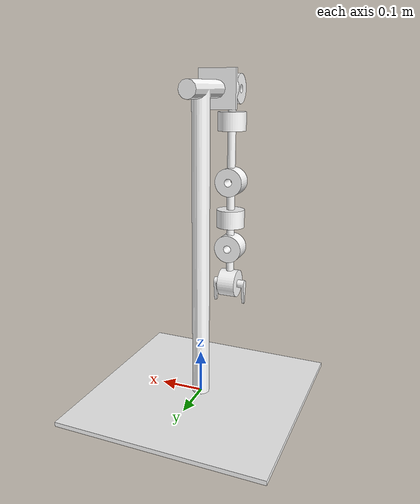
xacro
<?xml version="1.0"?>
<robot xmlns:xacro="http://www.ros.org/wiki/xacro" name="y7_arm_lite">
    <xacro:arg name="initial_positions_file" default="initial_positions.yaml" />

    <!-- Import y7_arm_lite urdf file -->
    <xacro:include filename="$(find y7_arm_lite)/urdf/y7_arm_lite.urdf" />

    <!-- Import control_xacro -->
    <xacro:include filename="y7_arm_lite.ros2_control.xacro" />

    <xacro:y7_arm_lite_ros2_control name="FakeSystem" initial_positions_file="$(arg initial_positions_file)"/>

</robot>

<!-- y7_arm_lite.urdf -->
<robot
  name="y7_arm_lite">
  <link
    name="base_link">
    <inertial>
      <origin
        xyz="-6.18896475667127E-08 -0.00731885816385526 0.157068118395406"
        rpy="0 0 0" />
      <mass
        value="3.68312490206078" />
      <inertia
        ixx="0.253102013480795"
        ixy="1.7503993282276E-08"
        ixz="1.22703848531346E-07"
        iyy="0.248272272534427"
        iyz="0.00460168302535419"
        izz="0.097406600502401" />
    </inertial>
    <visual>
      <origin
        xyz="0 0 0"
        rpy="0 0 0" />
      <geometry>
        <mesh
          filename="package://y7_arm_lite/meshes/base_link.STL" />
      </geometry>
      <material
        name="">
        <color
          rgba="1 1 1 1" />
      </material>
    </visual>
    <collision>
      <origin
        xyz="0 0 0"
        rpy="0 0 0" />
      <geometry>
        <mesh
          filename="package://y7_arm_lite/meshes/base_link.STL" />
      </geometry>
    </collision>
  </link>
  <link
    name="link1">
    <inertial>
      <origin
        xyz="2.87786213609239E-08 -0.048267128197082 -3.48820584322376E-08"
        rpy="0 0 0" />
      <mass
        value="0.16544065423041" />
      <inertia
        ixx="0.000103051264182943"
        ixy="-1.10488189781942E-10"
        ixz="-5.49849523717257E-11"
        iyy="7.98436744522682E-05"
        iyz="2.26815258240716E-10"
        izz="7.72024156337137E-05" />
    </inertial>
    <visual>
      <origin
        xyz="0 0 0"
        rpy="0 0 0" />
      <geometry>
        <mesh
          filename="package://y7_arm_lite/meshes/link1.STL" />
      </geometry>
      <material
        name="">
        <color
          rgba="1 1 1 1" />
      </material>
    </visual>
    <collision>
      <origin
        xyz="0 0 0"
        rpy="0 0 0" />
      <geometry>
        <mesh
          filename="package://y7_arm_lite/meshes/link1.STL" />
      </geometry>
    </collision>
  </link>
  <joint
    name="joint1"
    type="revolute">
    <origin
      xyz="0 -0.141 0.7"
      rpy="0 0 0" />
    <parent
      link="base_link" />
    <child
      link="link1" />
    <axis
      xyz="0 1 0" />
    <limit
      lower="-3.14"
      upper="3.14"
      effort="50"
      velocity="2" />
  </joint>
  <link
    name="link2">
    <inertial>
      <origin
        xyz="6.15479618241637E-10 5.76971999344256E-09 -0.0729517687885565"
        rpy="0 0 0" />
      <mass
        value="0.173508752370258" />
      <inertia
        ixx="8.24468631006998E-05"
        ixy="-2.24568112137793E-12"
        ixz="-6.59836221995086E-13"
        iyy="8.24407880527573E-05"
        iyz="-5.57638666042865E-12"
        izz="0.000106091971798337" />
    </inertial>
    <visual>
      <origin
        xyz="0 0 0"
        rpy="0 0 0" />
      <geometry>
        <mesh
          filename="package://y7_arm_lite/meshes/link2.STL" />
      </geometry>
      <material
        name="">
        <color
          rgba="1 1 1 1" />
      </material>
    </visual>
    <collision>
      <origin
        xyz="0 0 0"
        rpy="0 0 0" />
      <geometry>
        <mesh
          filename="package://y7_arm_lite/meshes/link2.STL" />
      </geometry>
    </collision>
  </link>
  <joint
    name="joint2"
    type="revolute">
    <origin
      xyz="0 -0.05 0"
      rpy="0 0 0" />
    <parent
      link="link1" />
    <child
      link="link2" />
    <axis
      xyz="1 0 0" />
    <limit
      lower="-3.14"
      upper="3.14"
      effort="50"
      velocity="2" />
  </joint>
  <link
    name="link3">
    <inertial>
      <origin
        xyz="-2.1443569564825E-12 -2.22044604925031E-16 -0.134759636112755"
        rpy="0 0 0" />
      <mass
        value="0.188272728864576" />
      <inertia
        ixx="0.000102859680851176"
        ixy="-1.34056824195818E-14"
        ixz="2.26766224584472E-14"
        iyy="0.00012870528255933"
        iyz="8.91360500184562E-21"
        izz="8.09621649695876E-05" />
    </inertial>
    <visual>
      <origin
        xyz="0 0 0"
        rpy="0 0 0" />
      <geometry>
        <mesh
          filename="package://y7_arm_lite/meshes/link3.STL" />
      </geometry>
      <material
        name="">
        <color
          rgba="1 1 1 1" />
      </material>
    </visual>
    <collision>
      <origin
        xyz="0 0 0"
        rpy="0 0 0" />
      <geometry>
        <mesh
          filename="package://y7_arm_lite/meshes/link3.STL" />
      </geometry>
    </collision>
  </link>
  <joint
    name="joint3"
    type="revolute">
    <origin
      xyz="0 0 -0.0755"
      rpy="0 0 0" />
    <parent
      link="link2" />
    <child
      link="link3" />
    <axis
      xyz="0 0 1" />
    <limit
      lower="-3.14"
      upper="3.14"
      effort="50"
      velocity="2" />
  </joint>
  <link
    name="link4">
    <inertial>
      <origin
        xyz="5.65645560691743E-09 -8.16500755895788E-11 -0.0898766067475472"
        rpy="0 0 0" />
      <mass
        value="0.170151895219343" />
      <inertia
        ixx="8.09565847273596E-05"
        ixy="1.47050798557356E-13"
        ixz="-2.85295448724911E-12"
        iyy="8.09604119058479E-05"
        iyz="5.41207071260792E-14"
        izz="0.000105923409833927" />
    </inertial>
    <visual>
      <origin
        xyz="0 0 0"
        rpy="0 0 0" />
      <geometry>
        <mesh
          filename="package://y7_arm_lite/meshes/link4.STL" />
      </geometry>
      <material
        name="">
        <color
          rgba="1 1 1 1" />
      </material>
    </visual>
    <collision>
      <origin
        xyz="0 0 0"
        rpy="0 0 0" />
      <geometry>
        <mesh
          filename="package://y7_arm_lite/meshes/link4.STL" />
      </geometry>
    </collision>
  </link>
  <joint
    name="joint4"
    type="revolute">
    <origin
      xyz="0 0 -0.1475"
      rpy="0 0 0" />
    <parent
      link="link3" />
    <child
      link="link4" />
    <axis
      xyz="0 1 0" />
    <limit
      lower="-3.14"
      upper="3.14"
      effort="50"
      velocity="2" />
  </joint>
  <link
    name="link5">
    <inertial>
      <origin
        xyz="1.22480215582446E-10 5.55111512312578E-17 -0.0757683803195806"
        rpy="0 0 0" />
      <mass
        value="0.165433389389251" />
      <inertia
        ixx="7.85421322406978E-05"
        ixy="8.08536583525422E-13"
        ixz="-1.17103405314417E-12"
        iyy="0.000104390419353834"
        iyz="-1.3100560696249E-20"
        izz="7.98426194741593E-05" />
    </inertial>
    <visual>
      <origin
        xyz="0 0 0"
        rpy="0 0 0" />
      <geometry>
        <mesh
          filename="package://y7_arm_lite/meshes/link5.STL" />
      </geometry>
      <material
        name="">
        <color
          rgba="1 1 1 1" />
      </material>
    </visual>
    <collision>
      <origin
        xyz="0 0 0"
        rpy="0 0 0" />
      <geometry>
        <mesh
          filename="package://y7_arm_lite/meshes/link5.STL" />
      </geometry>
    </collision>
  </link>
  <joint
    name="joint5"
    type="revolute">
    <origin
      xyz="0 0 -0.0925"
      rpy="0 0 0" />
    <parent
      link="link4" />
    <child
      link="link5" />
    <axis
      xyz="0 0 -1" />
    <limit
      lower="-3.14"
      upper="3.14"
      effort="50"
      velocity="2" />
  </joint>
  <link
    name="link6">
    <inertial>
      <origin
        xyz="2.84234111815309E-08 4.41003553952601E-08 -0.0927036607374384"
        rpy="0 0 0" />
      <mass
        value="0.167122907481511" />
      <inertia
        ixx="0.000123367435383306"
        ixy="9.51564512301758E-12"
        ixz="2.17664598085861E-12"
        iyy="9.75229312937733E-05"
        iyz="1.07225511950256E-11"
        izz="7.99293933142922E-05" />
    </inertial>
    <visual>
      <origin
        xyz="0 0 0"
        rpy="0 0 0" />
      <geometry>
        <mesh
          filename="package://y7_arm_lite/meshes/link6.STL" />
      </geometry>
      <material
        name="">
        <color
          rgba="1 1 1 1" />
      </material>
    </visual>
    <collision>
      <origin
        xyz="0 0 0"
        rpy="0 0 0" />
      <geometry>
        <mesh
          filename="package://y7_arm_lite/meshes/link6.STL" />
      </geometry>
    </collision>
  </link>
  <joint
    name="joint6"
    type="revolute">
    <origin
      xyz="0 0 -0.0775"
      rpy="0 0 0" />
    <parent
      link="link5" />
    <child
      link="link6" />
    <axis
      xyz="0 1 0" />
    <limit
      lower="-3.14"
      upper="3.14"
      effort="50"
      velocity="2" />
  </joint>
  <link
    name="link7">
    <inertial>
      <origin
        xyz="2.02635381577223E-16 -1.38777878078145E-17 -0.00508404154155806"
        rpy="0 0 0" />
      <mass
        value="0.031922315763199" />
      <inertia
        ixx="5.75852930948012E-06"
        ixy="-7.89447541267279E-20"
        ixz="7.16667955866577E-20"
        iyy="2.83655037622807E-05"
        iyz="4.72508562557759E-22"
        izz="2.40932613924971E-05" />
    </inertial>
    <visual>
      <origin
        xyz="0 0 0"
        rpy="0 0 0" />
      <geometry>
        <mesh
          filename="package://y7_arm_lite/meshes/link7.STL" />
      </geometry>
      <material
        name="">
        <color
          rgba="1 1 1 1" />
      </material>
    </visual>
    <collision>
      <origin
        xyz="0 0 0"
        rpy="0 0 0" />
      <geometry>
        <mesh
          filename="package://y7_arm_lite/meshes/link7.STL" />
      </geometry>
    </collision>
  </link>
  <joint
    name="joint7"
    type="revolute">
    <origin
      xyz="0 0 -0.095"
      rpy="0 0 0" />
    <parent
      link="link6" />
    <child
      link="link7" />
    <axis
      xyz="1 0 0" />
    <limit
      lower="-3.14"
      upper="3.14"
      effort="50"
      velocity="2" />
  </joint>
</robot>
